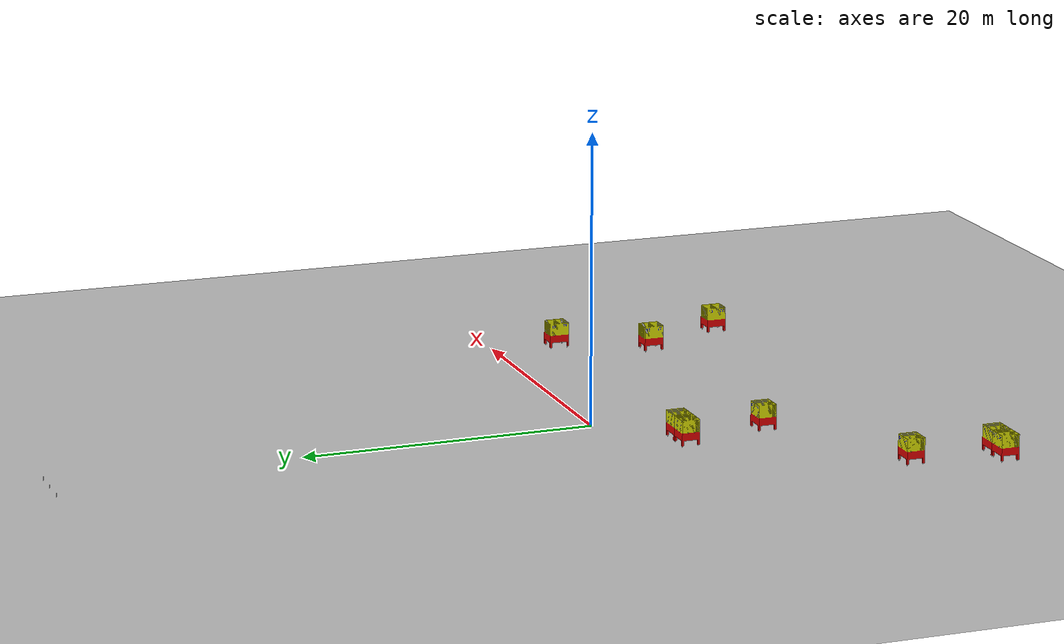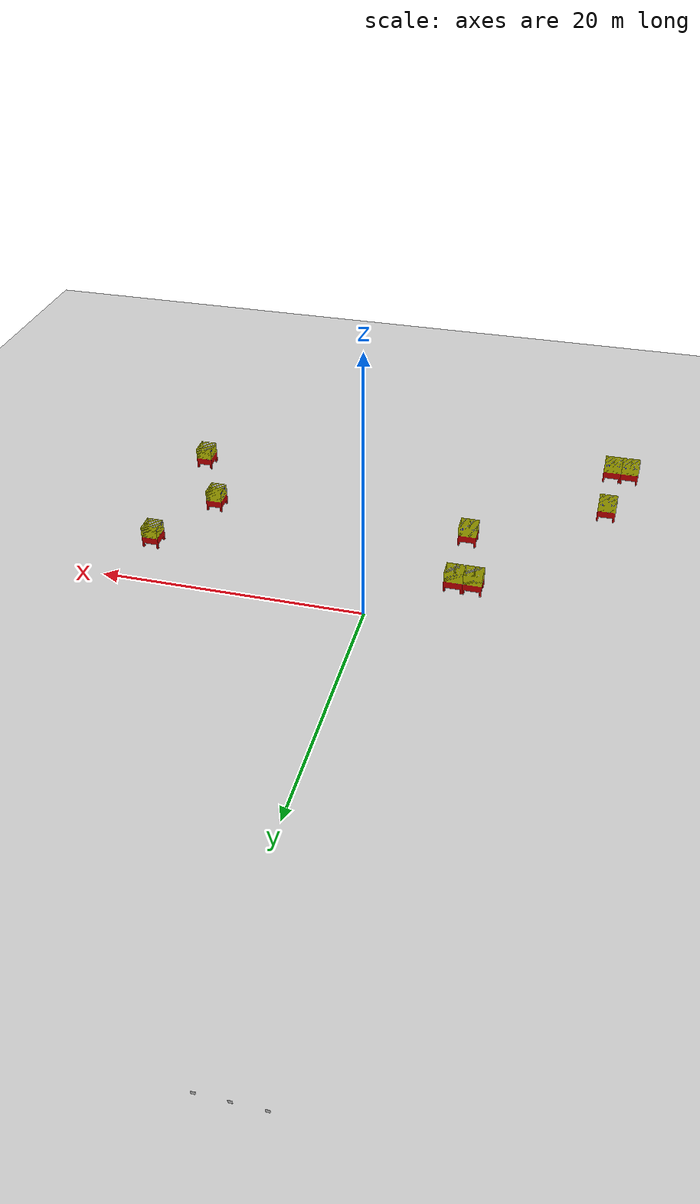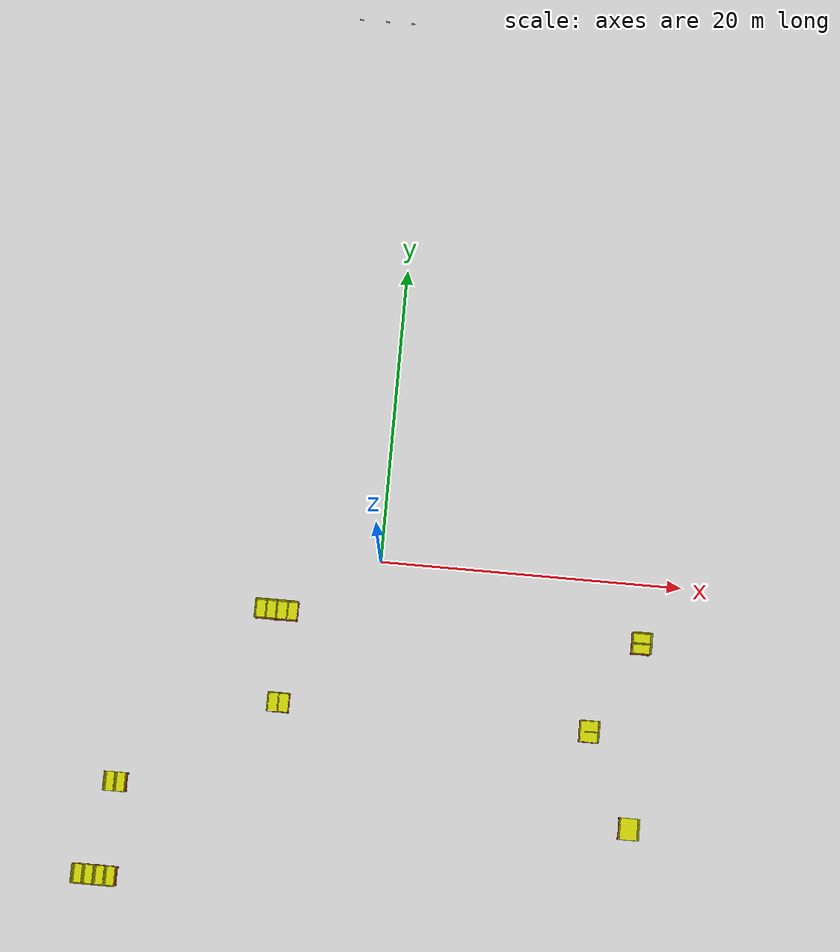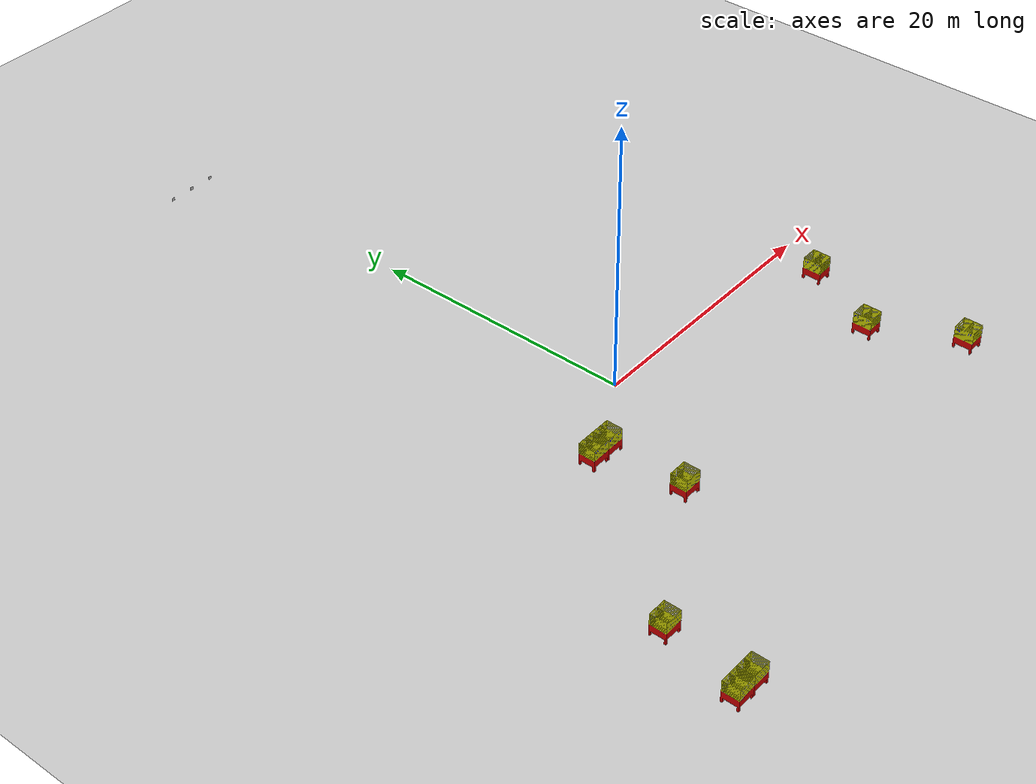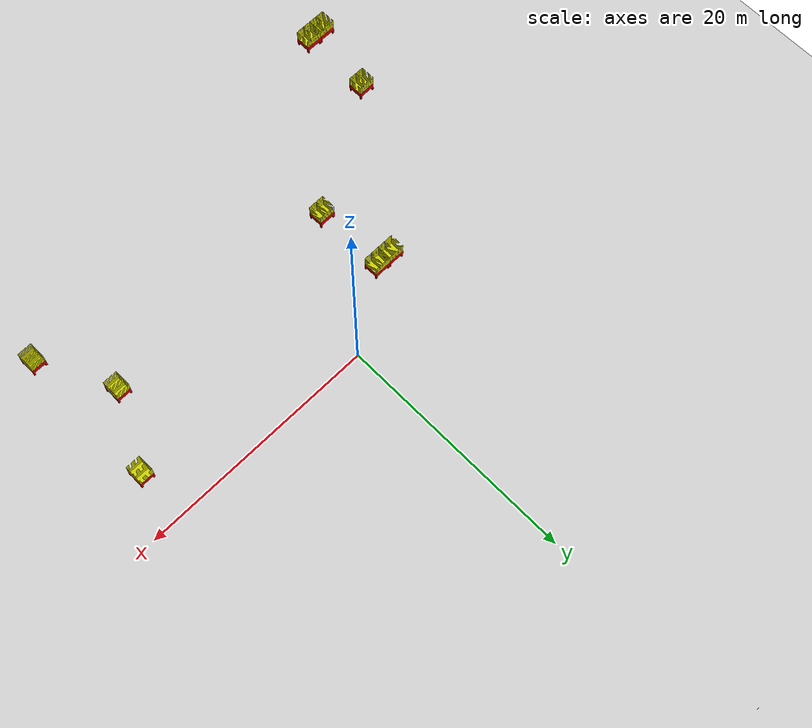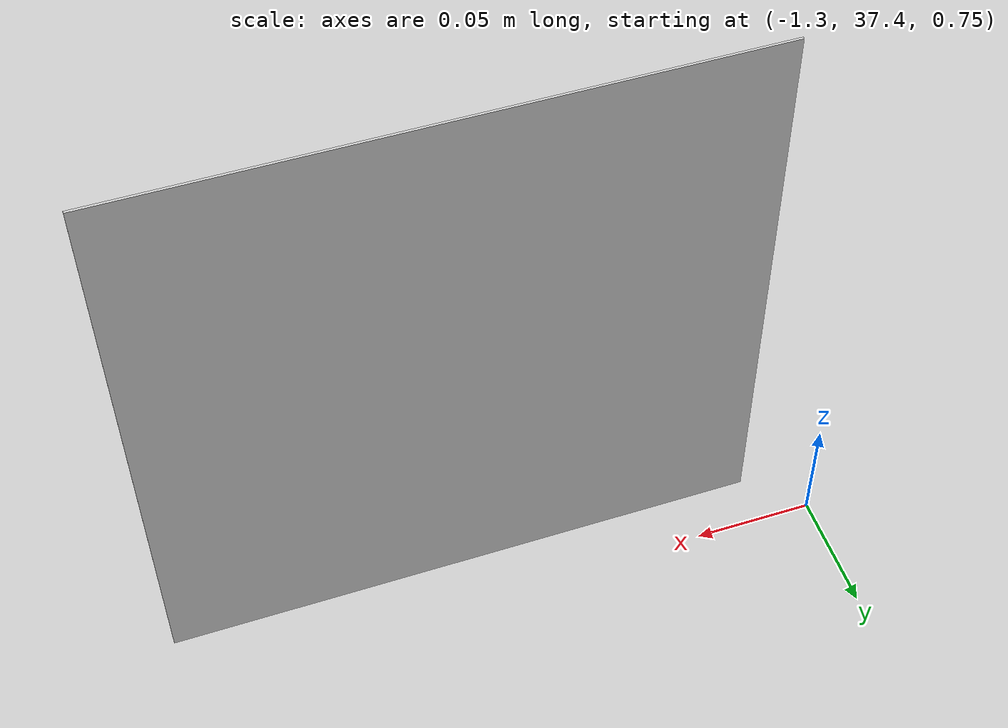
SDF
<sdf version="1.6">
 <world name="default">
  <light name="sun" type="directional">
   <pose>0 0 10 0 -0 0</pose>
   <diffuse>0.8 0.8 0.8 1</diffuse>
   <specular>0.2 0.2 0.2 1</specular>
   <attenuation>
    <range>1000</range>
    <constant>0.9</constant>
    <linear>0.01</linear>
    <quadratic>0.001</quadratic>
   </attenuation>
   <direction>-0.5 0.1 -0.9</direction>
  </light>
  <model name="ground_plane">
   <static>1</static>
   <link name="link">
    <collision name="collision">
     <geometry><plane><normal>0 0 1</normal><size>100 100</size></plane></geometry>
     <surface><friction><ode><mu>100</mu><mu2>50</mu2></ode></friction></surface>
    </collision>
    <visual name="visual">
     <cast_shadows>0</cast_shadows>
     <geometry><plane><normal>0 0 1</normal><size>100 100</size></plane></geometry>
     <material>
      <script><uri>file://media/materials/scripts/gazebo.material</uri><name>Gazebo/Grey</name></script>
     </material>
    </visual>
   </link>
  </model>
  <gravity>0 0 -9.8</gravity>
  <magnetic_field>6e-06 2.3e-05 -4.2e-05</magnetic_field>
  <atmosphere type="adiabatic"/>
  <physics name="default_physics" default="0" type="ode">
   <max_step_size>0.001</max_step_size>
   <real_time_factor>1</real_time_factor>
   <real_time_update_rate>1000</real_time_update_rate>
  </physics>
  <scene><ambient>0.4 0.4 0.4 1</ambient><background>0.7 0.7 0.7 1</background><shadows>1</shadows></scene>
  <audio><device>default</device></audio>
  <spherical_coordinates>
   <surface_model>EARTH_WGS84</surface_model>
   <latitude_deg>0</latitude_deg>
   <longitude_deg>0</longitude_deg>
   <elevation>0</elevation>
   <heading_deg>0</heading_deg>
  </spherical_coordinates>
  <model name="plot_factory_load_0">
   <static>1</static>
   <pose>17.5 -4 0.6 0 0 -1.57</pose>
   <link name="link">
    <collision name="collision">
     <geometry><mesh><uri>model://plot_factory_load/meshes/plotyuk.dae</uri></mesh></geometry>
    </collision>
    <visual name="visual">
     <geometry><mesh><uri>model://plot_factory_load/meshes/plotyuk.dae</uri></mesh></geometry>
    </visual>
   </link>
  </model>
  <model name="plot_factory_load_5">
   <static>1</static>
   <pose>14.5 -10 0.6 0 0 -1.57</pose>
   <link name="link">
    <collision name="collision">
     <geometry><mesh><uri>model://plot_factory_load/meshes/plotyuk.dae</uri></mesh></geometry>
    </collision>
    <visual name="visual">
     <geometry><mesh><uri>model://plot_factory_load/meshes/plotyuk.dae</uri></mesh></geometry>
    </visual>
   </link>
  </model>
  <model name="plot_factory_load_12">
   <static>1</static>
   <pose>17.5 -16 0.6 0 0 -1.57</pose>
   <link name="link">
    <collision name="collision">
     <geometry><mesh><uri>model://plot_factory_load/meshes/plotyuk.dae</uri></mesh></geometry>
    </collision>
    <visual name="visual">
     <geometry><mesh><uri>model://plot_factory_load/meshes/plotyuk.dae</uri></mesh></geometry>
    </visual>
   </link>
  </model>
  <model name="plot_factory_station1">
   <static>1</static>
   <pose>0 -0.001 0.4 0 -0 0</pose>
   <link name="link">
    <collision name="collision">
     <geometry><mesh><uri>model://plot_factory_station1/meshes/plotqr.dae</uri></mesh></geometry>
    </collision>
    <visual name="visual">
     <geometry><mesh><uri>model://plot_factory_station1/meshes/plotqr.dae</uri></mesh></geometry>
     <material>
      <script>
       <name>Station1</name>
       <uri>model://plot_factory_station1/materials/scripts</uri>
       <uri>model://plot_factory_station1/materials/textures</uri>
      </script>
     </material>
    </visual>
   </link>
  </model>
  <model name="plot_factory_station2">
   <static>1</static>
   <pose>1.8 0 0.4 0 -0 0</pose>
   <link name="link">
    <collision name="collision">
     <geometry><mesh><uri>model://plot_factory_station2/meshes/plotqr.dae</uri></mesh></geometry>
    </collision>
    <visual name="visual">
     <geometry><mesh><uri>model://plot_factory_station2/meshes/plotqr.dae</uri></mesh></geometry>
     <material>
      <script>
       <name>Station2</name>
       <uri>model://plot_factory_station2/materials/scripts</uri>
       <uri>model://plot_factory_station2/materials/textures</uri>
      </script>
     </material>
    </visual>
   </link>
  </model>
  <model name="plot_factory_station3">
   <static>1</static>
   <pose>3.6 0 0.4 0 -0 0</pose>
   <link name="link">
    <collision name="collision">
     <geometry><mesh><uri>model://plot_factory_station3/meshes/plotqr.dae</uri></mesh></geometry>
    </collision>
    <visual name="visual">
     <geometry><mesh><uri>model://plot_factory_station3/meshes/plotqr.dae</uri></mesh></geometry>
     <material>
      <script>
       <name>Station3</name>
       <uri>model://plot_factory_station3/materials/scripts</uri>
       <uri>model://plot_factory_station3/materials/textures</uri>
      </script>
     </material>
    </visual>
   </link>
  </model>
  <model name="plot_factory_load_23">
   <static>1</static>
   <pose>-5.82 -9.9 0.6 0 0 -3.14</pose>
   <link name="link">
    <collision name="collision">
     <geometry><mesh><uri>model://plot_factory_load/meshes/plotyuk.dae</uri></mesh></geometry>
    </collision>
    <visual name="visual">
     <geometry><mesh><uri>model://plot_factory_load/meshes/plotyuk.dae</uri></mesh></geometry>
    </visual>
   </link>
  </model>
  <model name="plot_factory_load_26">
   <static>1</static>
   <pose>-5.82 -3.9 0.6 0 -0 0</pose>
   <link name="link">
    <collision name="collision">
     <geometry><mesh><uri>model://plot_factory_load/meshes/plotyuk.dae</uri></mesh></geometry>
    </collision>
    <visual name="visual">
     <geometry><mesh><uri>model://plot_factory_load/meshes/plotyuk.dae</uri></mesh></geometry>
    </visual>
   </link>
  </model>
  <model name="plot_factory_load_27">
   <static>1</static>
   <pose>-7.22 -3.9 0.6 0 -0 0</pose>
   <link name="link">
    <collision name="collision">
     <geometry><mesh><uri>model://plot_factory_load/meshes/plotyuk.dae</uri></mesh></geometry>
    </collision>
    <visual name="visual">
     <geometry><mesh><uri>model://plot_factory_load/meshes/plotyuk.dae</uri></mesh></geometry>
    </visual>
   </link>
  </model>
  <model name="plot_factory_load_29">
   <static>1</static>
   <pose>-15.82 -21.9 0.6 0 0 -3.14</pose>
   <link name="link">
    <collision name="collision">
     <geometry><mesh><uri>model://plot_factory_load/meshes/plotyuk.dae</uri></mesh></geometry>
    </collision>
    <visual name="visual">
     <geometry><mesh><uri>model://plot_factory_load/meshes/plotyuk.dae</uri></mesh></geometry>
    </visual>
   </link>
  </model>
  <model name="plot_factory_load_30">
   <static>1</static>
   <pose>-17.22 -21.9 0.6 0 0 -3.14</pose>
   <link name="link">
    <collision name="collision">
     <geometry><mesh><uri>model://plot_factory_load/meshes/plotyuk.dae</uri></mesh></geometry>
    </collision>
    <visual name="visual">
     <geometry><mesh><uri>model://plot_factory_load/meshes/plotyuk.dae</uri></mesh></geometry>
    </visual>
   </link>
  </model>
  <model name="plot_factory_load_32">
   <static>1</static>
   <pose>-15.82 -15.9 0.6 0 0 -3.14</pose>
   <link name="link">
    <collision name="collision">
     <geometry><mesh><uri>model://plot_factory_load/meshes/plotyuk.dae</uri></mesh></geometry>
    </collision>
    <visual name="visual">
     <geometry><mesh><uri>model://plot_factory_load/meshes/plotyuk.dae</uri></mesh></geometry>
    </visual>
   </link>
  </model>
 </world>
</sdf>
